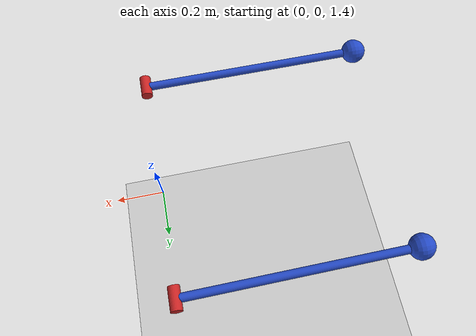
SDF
<?xml version="1.0" ?>
<sdf version="1.6">
<world name="default">
  <include>
    <uri>model://ground_plane</uri>
  </include>
  <include>
    <uri>model://sun</uri>
  </include>

  <!-- Damped pendulum model in which the damping is computed by the physics engine via the damping specified in SDF tags -->
  <model name="pendulum_damped_via_sdf">
    <pose>0 -0.5 1.5 0 0 0</pose>
    <link name="pendulum">
      <pose>0.0 0.0 0.0 0.0 1.5707963268 0.0</pose>
      <inertial>
        <mass>1.0</mass>
        <pose>0 0 -1.0 0 0 0</pose>
        <inertia>
          <ixx>0.001</ixx>
          <ixy>0</ixy>
          <ixz>0</ixz>
          <iyy>0.001</iyy>
          <iyz>0</iyz>
          <izz>0.001</izz>
        </inertia>
      </inertial>
      <visual name="joint_axis">
        <pose>0.0 0.0 0.0 1.5707963268 0.0 0.0</pose>
        <geometry>
          <cylinder>
            <radius>0.025</radius>
            <length>0.1</length>
          </cylinder>
        </geometry>
        <material>
          <script>
            <uri>file://media/materials/scripts/gazebo.material</uri>
            <name>Gazebo/Red</name>
          </script>
        </material>
      </visual>
      <visual name="rod">
        <pose>0 0 -0.5 0.0 0.0 0.0</pose>
        <geometry>
          <cylinder>
            <radius>0.0185185185185</radius>
            <length>1</length>
          </cylinder>
        </geometry>
        <material>
          <script>
            <uri>file://media/materials/scripts/gazebo.material</uri>
            <name>Gazebo/Blue</name>
          </script>
        </material>
      </visual>
      <visual name="point_mass">
        <pose>0 0 -1.0 0 0 0</pose>
        <geometry>
          <sphere>
            <radius>0.055555555555555</radius>
          </sphere>
        </geometry>
        <material>
          <script>
            <uri>file://media/materials/scripts/gazebo.material</uri>
            <name>Gazebo/Blue</name>
          </script>
        </material>
      </visual>
    </link>
    <joint name="joint" type="revolute">
      <parent>world</parent>
      <child>pendulum</child>
      <axis>
        <xyz>0.0 1.0 0.0</xyz>
        <dynamics>
          <damping>0.1</damping>
          <friction>0</friction>
          <spring_reference>0</spring_reference>
          <spring_stiffness>0</spring_stiffness>
        </dynamics>
      </axis>
    </joint>
  </model>

  <!-- Damped pendulum model in which the damping is computed via a damper Modelica model, loaded via gazebo_fmi  -->
  <model name="pendulum_damped_via_fmi">
    <pose>0 0.5 1.5 0 0 0</pose>
    <link name="pendulum">
      <pose>0.0 0.0 0.0 0.0 1.5707963268 0.0</pose>
      <inertial>
        <mass>1.0</mass>
        <pose>0 0 -1.0 0 0 0</pose>
        <inertia>
          <ixx>0.001</ixx>
          <ixy>0</ixy>
          <ixz>0</ixz>
          <iyy>0.001</iyy>
          <iyz>0</iyz>
          <izz>0.001</izz>
        </inertia>
      </inertial>
      <visual name="joint_axis">
        <pose>0.0 0.0 0.0 1.5707963268 0.0 0.0</pose>
        <geometry>
          <cylinder>
            <radius>0.025</radius>
            <length>0.1</length>
          </cylinder>
        </geometry>
        <material>
          <script>
            <uri>file://media/materials/scripts/gazebo.material</uri>
            <name>Gazebo/Red</name>
          </script>
        </material>
      </visual>
      <visual name="rod">
        <pose>0 0 -0.5 0.0 0.0 0.0</pose>
        <geometry>
          <cylinder>
            <radius>0.0185185185185</radius>
            <length>1</length>
          </cylinder>
        </geometry>
        <material>
          <script>
            <uri>file://media/materials/scripts/gazebo.material</uri>
            <name>Gazebo/Blue</name>
          </script>
        </material>
      </visual>
      <visual name="point_mass">
        <pose>0 0 -1.0 0 0 0</pose>
        <geometry>
          <sphere>
            <radius>0.055555555555555</radius>
          </sphere>
        </geometry>
        <material>
          <script>
            <uri>file://media/materials/scripts/gazebo.material</uri>
            <name>Gazebo/Blue</name>
          </script>
        </material>
      </visual>
    </link>
    <joint name="joint" type="revolute">
      <parent>world</parent>
      <child>pendulum</child>
      <axis>
        <xyz>0.0 1.0 0.0</xyz>
        <dynamics>
          <!-- For this model the damping is 0 as the damping action will be provided by the damper fmu -->
          <damping>0.0</damping>
          <friction>0.0</friction>
          <spring_reference>0</spring_reference>
          <spring_stiffness>0</spring_stiffness>
        </dynamics>
      </axis>
    </joint>
    <!-- fmi actuator plugin -->
    <plugin name="damper" filename="libFMIActuatorPlugin.so">
       <actuator>
         <name>upper_joint_actuator</name>
         <joint>joint</joint>
         <fmu>Damper.fmu</fmu>
       </actuator>
    </plugin>
  </model>
</world>
</sdf>
